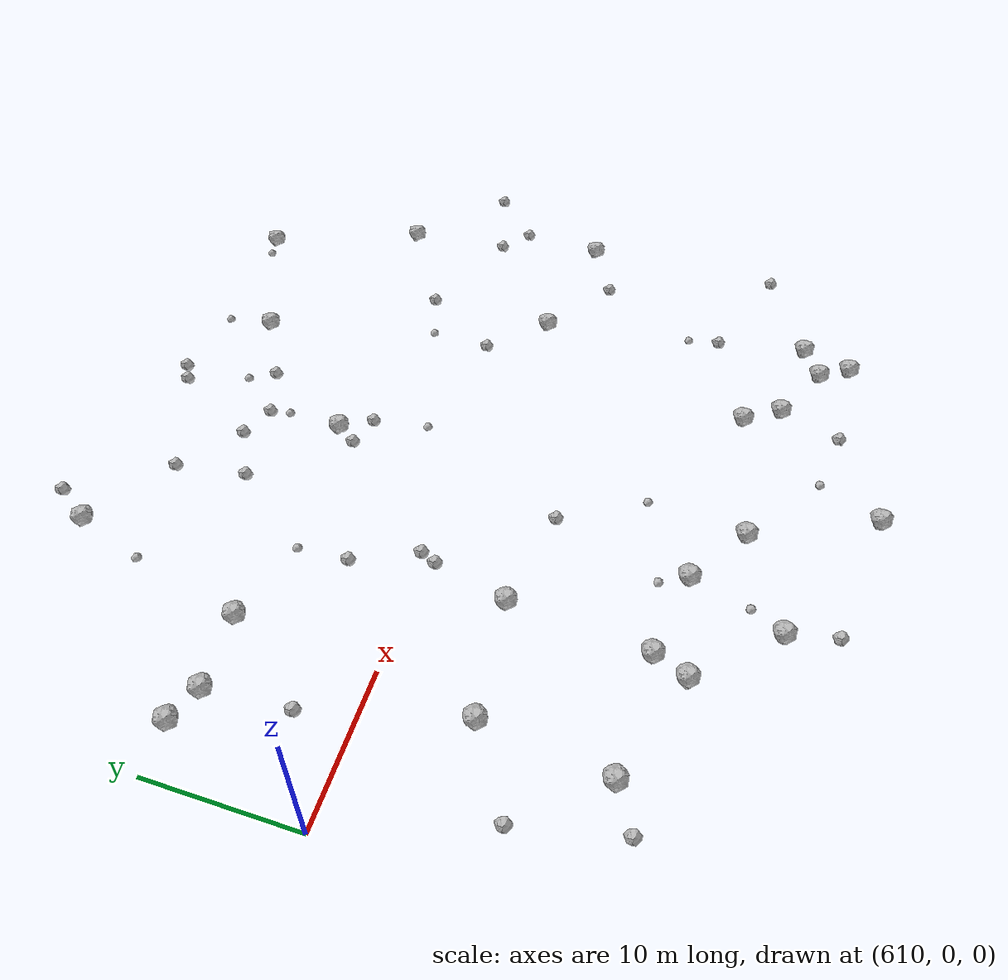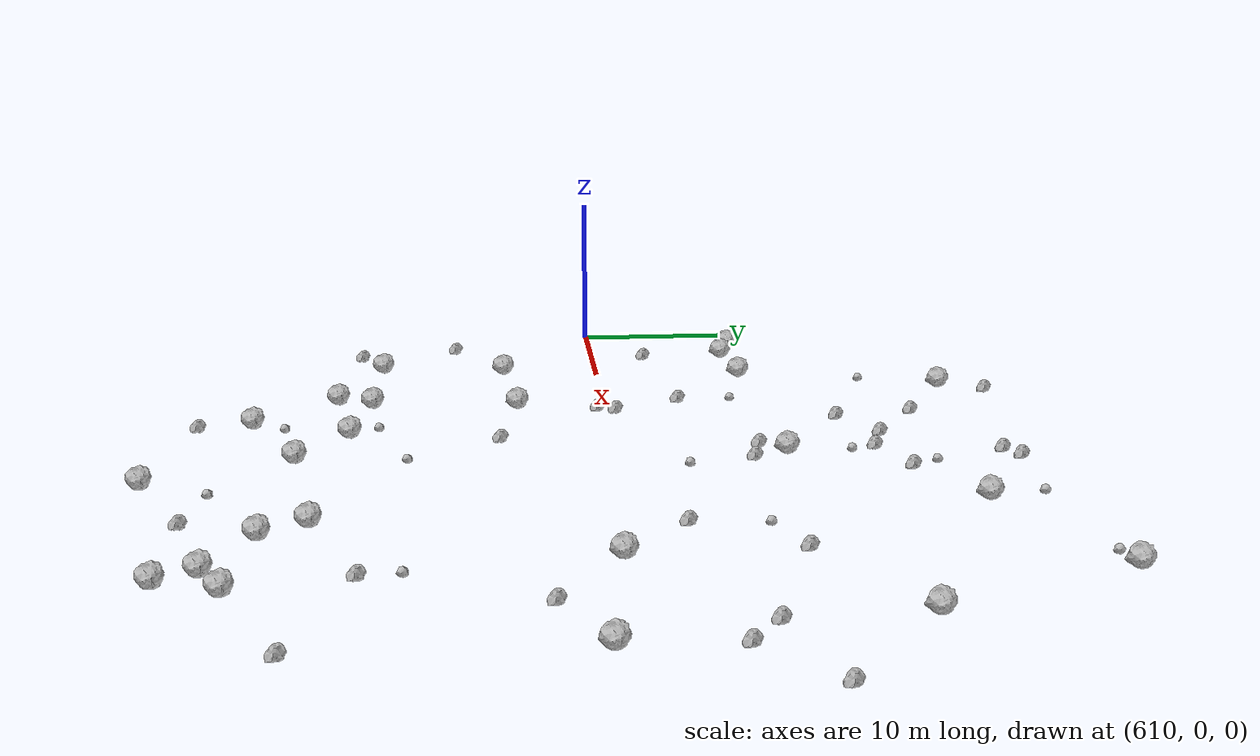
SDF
<sdf version="1.6">
 <world name="default">
  <include><uri>model://sun</uri></include>
  <model name="rock1_16_3">
   <include><uri>model://rock1</uri><pose>640.53769051491 -27.487715849035805 0.5 0 0 0</pose></include>
  </model>
  <model name="rock1_16_4">
   <include><uri>model://rock1</uri><pose>653.0220901549006 -1.3015630832297127 0.5 0 0 0</pose></include>
  </model>
  <model name="rock1_16_5">
   <include><uri>model://rock1</uri><pose>661.0713707774792 12.72403211461745 0.5 0 0 0</pose></include>
  </model>
  <model name="rock1_16_6">
   <include><uri>model://rock1</uri><pose>656.0367686148305 -21.027484573358187 0.5 0 0 0</pose></include>
  </model>
  <model name="rock1_16_7">
   <include><uri>model://rock1</uri><pose>615.8400985744615 9.282680621230817 0.5 0 0 0</pose></include>
  </model>
  <model name="rock1_16_8">
   <include><uri>model://rock1</uri><pose>648.8571447568166 -20.0572973437394 0.5 0 0 0</pose></include>
  </model>
  <model name="rock1_16_9">
   <include><uri>model://rock1</uri><pose>653.5402728552036 -22.375706015402034 0.5 0 0 0</pose></include>
  </model>
  <model name="rock1_16_10">
   <include><uri>model://rock1</uri><pose>636.6925605829493 -19.191595864879623 0.5 0 0 0</pose></include>
  </model>
  <model name="rock1_16_11">
   <include><uri>model://rock1</uri><pose>625.1501588329342 -17.33183552832773 0.5 0 0 0</pose></include>
  </model>
  <model name="rock1_16_12">
   <include><uri>model://rock1</uri><pose>663.4845907172589 -2.748983838461996 0.5 0 0 0</pose></include>
  </model>
  <model name="rock1_16_13">
   <include><uri>model://rock1</uri><pose>613.4666409953861 10.132868617532026 0.5 0 0 0</pose></include>
  </model>
  <model name="rock1_16_14">
   <include><uri>model://rock1</uri><pose>617.817549310363 -14.690368005897842 0.5 0 0 0</pose></include>
  </model>
  <model name="rock1_16_15">
   <include><uri>model://rock1</uri><pose>632.229726584749 -16.215768219221808 0.5 0 0 0</pose></include>
  </model>
  <model name="rock1_16_16">
   <include><uri>model://rock1</uri><pose>626.1036516222008 -15.08319192175486 0.5 0 0 0</pose></include>
  </model>
  <model name="rock1_16_17">
   <include><uri>model://rock1</uri><pose>637.532140668307 10.014944920520414 0.5 0 0 0</pose></include>
  </model>
  <model name="rock1_16_18">
   <include><uri>model://rock1</uri><pose>618.8756315469154 -6.396462563989587 0.5 0 0 0</pose></include>
  </model>
  <model name="rock1_16_19">
   <include><uri>model://rock1</uri><pose>656.5929043332819 24.137686696416523 0.5 0 0 0</pose></include>
  </model>
  <model name="rock1_16_20">
   <include><uri>model://rock1</uri><pose>646.3356011129605 19.709500242718498 0.5 0 0 0</pose></include>
  </model>
  <model name="rock1_16_21">
   <include><uri>model://rock1</uri><pose>647.2092227985512 -17.537668420139205 0.5 0 0 0</pose></include>
  </model>
  <model name="rock1_16_22">
   <include><uri>model://rock1</uri><pose>654.8130838144815 -24.47929361953218 0.5 0 0 0</pose></include>
  </model>
  <model name="rock1_16_23">
   <include><uri>model://rock1</uri><pose>626.9782287206582 -5.7294985030867736 0.5 0 0 0</pose></include>
  </model>
  <model name="rock1_16_24">
   <include><uri>model://rock1</uri><pose>624.5820838143918 22.813071836911348 0.5 0 0 0</pose></include>
  </model>
  <model name="rock1_16_25">
   <include><uri>model://rock1</uri><pose>620.8996787151191 9.744012737993792 0.5 0 0 0</pose></include>
  </model>
  <model name="rock1_16_26">
   <include><uri>model://rock1</uri><pose>629.8234184611482 -22.351983816247866 0.5 0 0 0</pose></include>
  </model>
  <model name="rock2_16_0">
   <include><uri>model://rock2</uri><pose>628.264188640197 -0.5918028002138023 0.3 0 0 0</pose></include>
  </model>
  <model name="rock2_16_1">
   <include><uri>model://rock2</uri><pose>641.0991693303841 16.770187175018073 0.3 0 0 0</pose></include>
  </model>
  <model name="rock2_16_2">
   <include><uri>model://rock2</uri><pose>663.9182694265874 3.350079245913065 0.3 0 0 0</pose></include>
  </model>
  <model name="rock2_16_3">
   <include><uri>model://rock2</uri><pose>639.8401388597247 23.64256449708607 0.3 0 0 0</pose></include>
  </model>
  <model name="rock2_16_4">
   <include><uri>model://rock2</uri><pose>634.8369019850536 16.318930212180163 0.3 0 0 0</pose></include>
  </model>
  <model name="rock2_16_5">
   <include><uri>model://rock2</uri><pose>668.1727199325139 6.940958290964417 0.3 0 0 0</pose></include>
  </model>
  <model name="rock2_16_6">
   <include><uri>model://rock2</uri><pose>653.0129957274905 8.207371557385002 0.3 0 0 0</pose></include>
  </model>
  <model name="rock2_16_7">
   <include><uri>model://rock2</uri><pose>626.2486010060924 25.543523927092316 0.3 0 0 0</pose></include>
  </model>
  <model name="rock2_16_8">
   <include><uri>model://rock2</uri><pose>626.8056832181234 4.783445752581635 0.3 0 0 0</pose></include>
  </model>
  <model name="rock2_16_9">
   <include><uri>model://rock2</uri><pose>634.1075844161297 -7.008151789283151 0.3 0 0 0</pose></include>
  </model>
  <model name="rock2_16_10">
   <include><uri>model://rock2</uri><pose>663.5134026487608 -17.623147825646512 0.3 0 0 0</pose></include>
  </model>
  <model name="rock2_16_11">
   <include><uri>model://rock2</uri><pose>637.349417854743 15.404547239161893 0.3 0 0 0</pose></include>
  </model>
  <model name="rock2_16_12">
   <include><uri>model://rock2</uri><pose>636.3853211293374 8.5113491072238 0.3 0 0 0</pose></include>
  </model>
  <model name="rock2_16_13">
   <include><uri>model://rock2</uri><pose>615.0332311327358 -16.242338966094927 0.3 0 0 0</pose></include>
  </model>
  <model name="rock2_16_14">
   <include><uri>model://rock2</uri><pose>638.7546363021174 7.864735868286424 0.3 0 0 0</pose></include>
  </model>
  <model name="rock2_16_15">
   <include><uri>model://rock2</uri><pose>631.2924576159452 14.35052222306011 0.3 0 0 0</pose></include>
  </model>
  <model name="rock2_16_16">
   <include><uri>model://rock2</uri><pose>654.8651835505398 -14.59958553132417 0.3 0 0 0</pose></include>
  </model>
  <model name="rock2_16_17">
   <include><uri>model://rock2</uri><pose>613.5797313221346 -9.665226816602555 0.3 0 0 0</pose></include>
  </model>
  <model name="rock2_16_18">
   <include><uri>model://rock2</uri><pose>658.6137427042698 -5.037326341781881 0.3 0 0 0</pose></include>
  </model>
  <model name="rock2_16_19">
   <include><uri>model://rock2</uri><pose>628.7873949220011 0.518572475725513 0.3 0 0 0</pose></include>
  </model>
  <model name="rock2_16_20">
   <include><uri>model://rock2</uri><pose>661.641154269587 5.089384471389117 0.3 0 0 0</pose></include>
  </model>
  <model name="rock2_16_21">
   <include><uri>model://rock2</uri><pose>648.9566312919496 2.527669546283448 0.3 0 0 0</pose></include>
  </model>
  <model name="rock2_16_22">
   <include><uri>model://rock2</uri><pose>647.1673953301108 -24.322126214542383 0.3 0 0 0</pose></include>
  </model>
  <model name="rock2_16_23">
   <include><uri>model://rock2</uri><pose>616.1738134518836 3.6553464859677334 0.3 0 0 0</pose></include>
  </model>
  <model name="rock2_16_24">
   <include><uri>model://rock2</uri><pose>630.4863489725137 -25.635892949238084 0.3 0 0 0</pose></include>
  </model>
  <model name="rock2_16_25">
   <include><uri>model://rock2</uri><pose>630.5799828082817 19.355706474027663 0.3 0 0 0</pose></include>
  </model>
  <model name="rock2_16_26">
   <include><uri>model://rock2</uri><pose>638.57076796307 22.894750403653205 0.3 0 0 0</pose></include>
  </model>
  <model name="rock3_16_0">
   <include><uri>model://rock3</uri><pose>654.7167416295791 23.759130258291272 0.2 0 0 0</pose></include>
  </model>
  <model name="rock3_16_1">
   <include><uri>model://rock3</uri><pose>639.4076755636389 3.906272800365592 0.2 0 0 0</pose></include>
  </model>
  <model name="rock3_16_2">
   <include><uri>model://rock3</uri><pose>624.6830720385949 -17.441832549687383 0.2 0 0 0</pose></include>
  </model>
  <model name="rock3_16_3">
   <include><uri>model://rock3</uri><pose>640.0401142126262 18.487231769892595 0.2 0 0 0</pose></include>
  </model>
  <model name="rock3_16_4">
   <include><uri>model://rock3</uri><pose>637.6333159450137 13.937054128030155 0.2 0 0 0</pose></include>
  </model>
  <model name="rock3_16_5">
   <include><uri>model://rock3</uri><pose>622.7853048359575 17.736850431820095 0.2 0 0 0</pose></include>
  </model>
  <model name="rock3_16_6">
   <include><uri>model://rock3</uri><pose>654.4863226478363 -12.385414143453858 0.2 0 0 0</pose></include>
  </model>
  <model name="rock3_16_7">
   <include><uri>model://rock3</uri><pose>631.1723230110158 -14.469439442020297 0.2 0 0 0</pose></include>
  </model>
  <model name="rock3_16_8">
   <include><uri>model://rock3</uri><pose>637.3789621421148 -12.574926940825073 0.2 0 0 0</pose></include>
  </model>
  <model name="rock3_16_9">
   <include><uri>model://rock3</uri><pose>642.4612444543295 -23.448529547778257 0.2 0 0 0</pose></include>
  </model>
  <model name="rock3_16_10">
   <include><uri>model://rock3</uri><pose>645.7853882227897 23.012244954377685 0.2 0 0 0</pose></include>
  </model>
  <model name="rock3_16_11">
   <include><uri>model://rock3</uri><pose>649.2047183419935 6.906086583951158 0.2 0 0 0</pose></include>
  </model>
  <model name="rock3_16_12">
   <include><uri>model://rock3</uri><pose>626.6462674196847 8.245435905889217 0.2 0 0 0</pose></include>
  </model>
  <model name="rock3_16_13">
   <include><uri>model://rock3</uri><pose>630.9604979262521 -20.276853655117904 0.2 0 0 0</pose></include>
  </model>
 </world>
</sdf>
